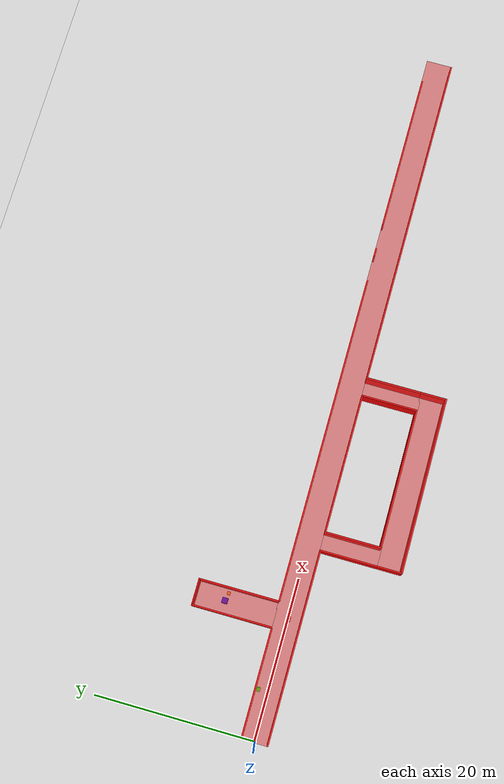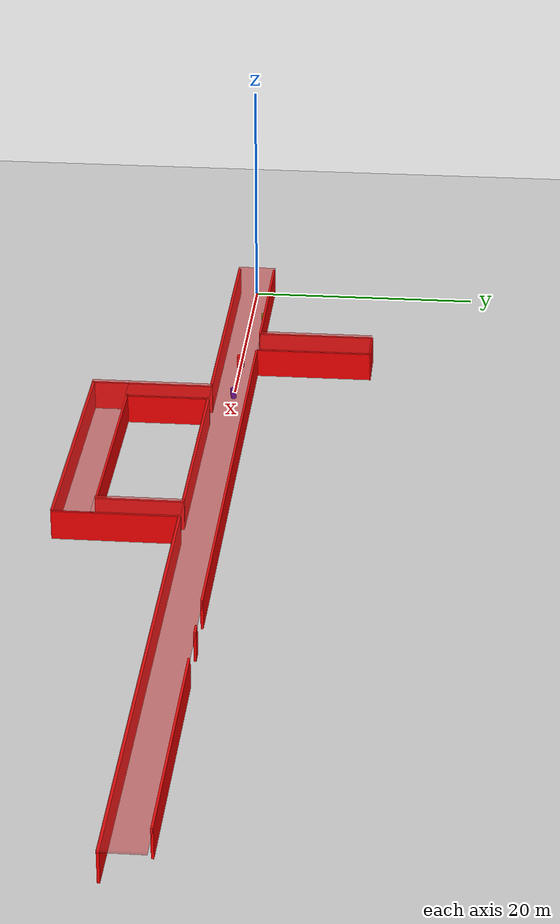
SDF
<sdf version="1.6">
  <world name="real_branch_tunnel">

    <!-- 光照与场景 -->
    <include>
      <uri>model://sun</uri>
    </include>

    <include>
      <uri>model://ground_plane</uri>
    </include>

    <scene>
      <ambient>0.25 0.25 0.25 1</ambient>
      <background>0.7 0.7 0.7 1</background>
      <shadows>false</shadows>
    </scene>

    <!-- 主隧道参数说明（逻辑） -->
    <!-- 主隧道沿 x 方向，长度 30m -->
    <!-- 内宽 3.0m，墙厚 0.2m，高 2.5m -->
    <!-- 所以左右墙中心在 y = ±1.6 -->
    <!-- 顶板中心 z = 2.6，厚 0.2 -->

    <!-- 主隧道顶板 -->
    <model name="main_ceiling">
      <static>true</static>
      <pose>45 0 2.6 0 0 0</pose>
      <link name="link">
        <collision name="collision">
          <geometry>
            <box><size>90 3.4 0.2</size></box>
          </geometry>
        </collision>
        <visual name="visual">
          <geometry>
            <box><size>90 3.4 0.2</size></box>
          </geometry>
          <material>
            <script>
              <uri>file://media/materials/scripts/gazebo.material</uri>
              <name>Gazebo/RedTransparent</name>
            </script>
          </material>
        </visual>
      </link>
    </model>

    <!-- 主隧道右墙，切成三段，中间留开口 -->
    <!-- 开口宽度2.5m，中心分别在x=25m和x=45m -->
    <!-- 第一段：x=0m 到 x=23.75m -->
    <model name="main_wall_right1">
      <static>true</static>
      <pose>11.875 -1.6 1.25 0 0 0</pose>
      <link name="link">
        <collision name="collision">
          <geometry>
            <box><size>23.75 0.2 2.5</size></box>
          </geometry>
        </collision>
        <visual name="visual">
          <geometry>
            <box><size>23.75 0.2 2.5</size></box>
          </geometry>
          <material>
            <ambient>1 0 0 1</ambient>
            <diffuse>1 0 0 1</diffuse>
            <specular>0.3 0.3 0.3 1</specular>
            <emissive>0.15 0 0 1</emissive>
          </material>
        </visual>
      </link>
    </model>

    <!-- 第二段：x=26.25m 到 x=43.75m -->
    <model name="main_wall_right2">
      <static>true</static>
      <pose>35 -1.6 1.25 0 0 0</pose>
      <link name="link">
        <collision name="collision">
          <geometry>
            <box><size>17.5 0.2 2.5</size></box>
          </geometry>
        </collision>
        <visual name="visual">
          <geometry>
            <box><size>17.5 0.2 2.5</size></box>
          </geometry>
          <material>
            <ambient>1 0 0 1</ambient>
            <diffuse>1 0 0 1</diffuse>
            <specular>0.3 0.3 0.3 1</specular>
            <emissive>0.15 0 0 1</emissive>
          </material>
        </visual>
      </link>
    </model>

    <!-- 第三段：x=46.25m 到 x=90m -->
    <model name="main_wall_right3">
      <static>true</static>
      <pose>68.125 -1.6 1.25 0 0 0</pose>
      <link name="link">
        <collision name="collision">
          <geometry>
            <box><size>43.75 0.2 2.5</size></box>
          </geometry>
        </collision>
        <visual name="visual">
          <geometry>
            <box><size>43.75 0.2 2.5</size></box>
          </geometry>
          <material>
            <ambient>1 0 0 1</ambient>
            <diffuse>1 0 0 1</diffuse>
            <specular>0.3 0.3 0.3 1</specular>
            <emissive>0.15 0 0 1</emissive>
          </material>
        </visual>
      </link>
    </model>

    <!-- 主隧道左墙：切成四段，中间留开口，形成真正岔口入口 -->
    <!-- 第一开口宽度 3.4m，中心在 x = 15 -->
    <!-- 第二三开口宽度 2.9m，中心分别在 x = 60 x = 65 -->
    <!-- 第一段：x = 0 到 13.3 -->
    <model name="main_wall_left1">
      <static>true</static>
      <pose>6.65 1.6 1.25 0 0 0</pose>
      <link name="link">
        <collision name="collision">
          <geometry>
            <box><size>13.3 0.2 2.5</size></box>
          </geometry>
        </collision>
        <visual name="visual">
          <geometry>
            <box><size>13.3 0.2 2.5</size></box>
          </geometry>
          <material>
            <ambient>1 0 0 1</ambient>
            <diffuse>1 0 0 1</diffuse>
            <specular>0.3 0.3 0.3 1</specular>
            <emissive>0.15 0 0 1</emissive>
          </material>
        </visual>
      </link>
    </model>

    <!-- 第二段：x = 16.7 到 58.55 -->
    <model name="main_wall_left2">
      <static>true</static>
      <pose>37.625 1.6 1.25 0 0 0</pose>
      <link name="link">
        <collision name="collision">
          <geometry>
            <box><size>41.85 0.2 2.5</size></box>
          </geometry>
        </collision>
        <visual name="visual">
          <geometry>
            <box><size>41.85 0.2 2.5</size></box>
          </geometry>
          <material>
            <ambient>1 0 0 1</ambient>
            <diffuse>1 0 0 1</diffuse>
            <specular>0.3 0.3 0.3 1</specular>
            <emissive>0.15 0 0 1</emissive>
          </material>
        </visual>
      </link>
    </model>
    <!-- 第三段：x = 61.45 到 63.55 -->
    <model name="main_wall_left3">
      <static>true</static>
      <pose>62.5 1.6 1.25 0 0 0</pose>
      <link name="link">
        <collision name="collision">
          <geometry>
            <box><size>1.05 0.2 2.5</size></box>
          </geometry>
        </collision>
        <visual name="visual">
          <geometry>
            <box><size>1.05 0.2 2.5</size></box>
          </geometry>
          <material>
            <ambient>1 0 0 1</ambient>
            <diffuse>1 0 0 1</diffuse>
            <specular>0.3 0.3 0.3 1</specular>
            <emissive>0.15 0 0 1</emissive>
          </material>
        </visual>
      </link>
    </model>
    <!-- 第四段：x = 66.45 到 87.1 -->
    <model name="main_wall_left4">
      <static>true</static>
      <pose>76.775 1.6 1.25 0 0 0</pose>
      <link name="link">
        <collision name="collision">
          <geometry>
            <box><size>20.65 0.2 2.5</size></box>
          </geometry>
        </collision>
        <visual name="visual">
          <geometry>
            <box><size>20.65 0.2 2.5</size></box>
          </geometry>
          <material>
            <ambient>1 0 0 1</ambient>
            <diffuse>1 0 0 1</diffuse>
            <specular>0.3 0.3 0.3 1</specular>
            <emissive>0.15 0 0 1</emissive>
          </material>
        </visual>
      </link>
    </model>

    <!-- 支路（真正的岔口） -->
    <!-- 从主隧道左侧开口处分出去，沿 +y 方向延伸 -->
    <!-- 支路中心线 x = 15 -->
    <!-- 支路长度 10m -->
    <!-- 支路内宽 3.0m，墙厚 0.2m，高 2.5m -->

    <!-- 支路左墙（x = 13.4） -->
    <model name="branch_wall_left">
      <static>true</static>
      <pose>13.4 6.6 1.25 0 0 0</pose>
      <link name="link">
        <collision name="collision">
          <geometry>
            <box><size>0.2 10 2.5</size></box>
          </geometry>
        </collision>
        <visual name="visual">
          <geometry>
            <box><size>0.2 10 2.5</size></box>
          </geometry>
          <material>
            <ambient>1 0 0 1</ambient>
            <diffuse>1 0 0 1</diffuse>
            <specular>0.3 0.3 0.3 1</specular>
            <emissive>0.15 0 0 1</emissive>
          </material>
        </visual>
      </link>
    </model>

    <!-- 支路右墙（x = 16.6） -->
    <model name="branch_wall_right">
      <static>true</static>
      <pose>16.6 6.6 1.25 0 0 0</pose>
      <link name="link">
        <collision name="collision">
          <geometry>
            <box><size>0.2 10 2.5</size></box>
          </geometry>
        </collision>
        <visual name="visual">
          <geometry>
            <box><size>0.2 10 2.5</size></box>
          </geometry>
          <material>
            <ambient>1 0 0 1</ambient>
            <diffuse>1 0 0 1</diffuse>
            <specular>0.3 0.3 0.3 1</specular>
            <emissive>0.15 0 0 1</emissive>
          </material>
        </visual>
      </link>
    </model>

    <!-- 支路顶板 -->
    <model name="branch_ceiling">
      <static>true</static>
      <pose>15 6.6 2.6 0 0 0</pose>
      <link name="link">
        <collision name="collision">
          <geometry>
            <box><size>3.4 10 0.2</size></box>
          </geometry>
        </collision>
        <visual name="visual">
          <geometry>
            <box><size>3.4 10 0.2</size></box>
          </geometry>
          <material>
            <script>
              <uri>file://media/materials/scripts/gazebo.material</uri>
              <name>Gazebo/RedTransparent</name>
            </script>
          </material>
        </visual>
      </link>
    </model>

    <!-- 可选：支路末端封口墙 -->
    <!-- 如果你想让支路尽头封死就保留；如果想让它继续通向更远，就删掉这个 model -->
    <model name="branch_end_wall">
      <static>true</static>
      <pose>15 11.6 1.25 0 0 0</pose>
      <link name="link">
        <collision name="collision">
          <geometry>
            <box><size>3.4 0.2 2.5</size></box>
          </geometry>
        </collision>
        <visual name="visual">
          <geometry>
            <box><size>3.4 0.2 2.5</size></box>
          </geometry>
          <material>
            <ambient>1 0 0 1</ambient>
            <diffuse>1 0 0 1</diffuse>
            <specular>0.3 0.3 0.3 1</specular>
            <emissive>0.15 0 0 1</emissive>
          </material>
        </visual>
      </link>
    </model>

    <!-- 回环支路 -->
    <!-- 从主隧道右侧开口处分出去，先沿 -y 方向延伸 10 m ，再沿 +x 方向延伸 20 m，最后向 +y 方向延伸回主隧道-->
    <!-- 支路1 中心线 x = 25 -->
    <!-- 支路1长度 10m -->
    <!-- 支路1内宽 2.1 m，墙厚 0.2m，高 2.5m -->

    <!-- 支路1左墙（x = 23.85） -->
    <model name="branch1_wall_left">
      <static>true</static>
      <pose>23.85 -6.7 1.25 0 0 0</pose>
      <link name="link">
        <collision name="collision">
          <geometry>
            <box><size>0.2 10.4 2.5</size></box>
          </geometry>
        </collision>
        <visual name="visual">
          <geometry>
            <box><size>0.2 10.4 2.5</size></box>
          </geometry>
          <material>
            <ambient>1 0 0 1</ambient>
            <diffuse>1 0 0 1</diffuse>
            <specular>0.3 0.3 0.3 1</specular>
            <emissive>0.15 0 0 1</emissive>
          </material>
        </visual>
      </link>
    </model>

    <!-- 支路1右墙（x = 26.15） -->
    <model name="branch1_wall_right">
      <static>true</static>
      <pose>26.15 -5.1 1.25 0 0 0</pose>
      <link name="link">
        <collision name="collision">
          <geometry>
            <box><size>0.2 7.2 2.5</size></box>
          </geometry>
        </collision>
        <visual name="visual">
          <geometry>
            <box><size>0.2 7.2 2.5</size></box>
          </geometry>
          <material>
            <ambient>1 0 0 1</ambient>
            <diffuse>1 0 0 1</diffuse>
            <specular>0.3 0.3 0.3 1</specular>
            <emissive>0.15 0 0 1</emissive>
          </material>
        </visual>
      </link>
    </model>

    <!-- 支路1顶板 -->
    <model name="branch1_ceiling">
      <static>true</static>
      <pose>25 -5.1 2.6 0 0 0</pose>
      <link name="link">
        <collision name="collision">
          <geometry>
            <box><size>2.5 7.2 0.2</size></box>
          </geometry>
        </collision>
        <visual name="visual">
          <geometry>
            <box><size>2.5 7.2 0.2</size></box>
          </geometry>
          <material>
            <script>
              <uri>file://media/materials/scripts/gazebo.material</uri>
              <name>Gazebo/RedTransparent</name>
            </script>
          </material>
        </visual>
      </link>
    </model>

    <!-- 分隧道1右墙（y = -11.8 ） -->
    <model name="tunnel1_wall_right">
      <static>true</static>
      <pose>35 -11.8 1.25 0 0 0</pose>
      <link name="link">
        <collision name="collision">
          <geometry>
            <box><size>22.5 0.2 2.5</size></box>
          </geometry>
        </collision>
        <visual name="visual">
          <geometry>
            <box><size>22.5 0.2 2.5</size></box>
          </geometry>
          <material>
            <ambient>1 0 0 1</ambient>
            <diffuse>1 0 0 1</diffuse>
            <specular>0.3 0.3 0.3 1</specular>
            <emissive>0.15 0 0 1</emissive>
          </material>
        </visual>
      </link>
    </model>

    <!-- 分隧道1左墙（y = -8.6 ） -->
    <model name="tunnel1_wall_left">
      <static>true</static>
      <pose>35 -8.6 1.25 0 0 0</pose>
      <link name="link">
        <collision name="collision">
          <geometry>
            <box><size>17.5 0.2 2.5</size></box>
          </geometry>
        </collision>
        <visual name="visual">
          <geometry>
            <box><size>17.5 0.2 2.5</size></box>
          </geometry>
          <material>
            <ambient>1 0 0 1</ambient>
            <diffuse>1 0 0 1</diffuse>
            <specular>0.3 0.3 0.3 1</specular>
            <emissive>0.15 0 0 1</emissive>
          </material>
        </visual>
      </link>
    </model>

    <!-- 分隧道1顶板 -->
    <model name="tunnel1_ceiling">
      <static>true</static>
      <pose>35 -10.2 2.6 0 0 0</pose>
      <link name="link">
        <collision name="collision">
          <geometry>
            <box><size>22.5 3.4 0.2</size></box>
          </geometry>
        </collision>
        <visual name="visual">
          <geometry>
            <box><size>22.5 3.4 0.2</size></box>
          </geometry>
          <material>
            <script>
              <uri>file://media/materials/scripts/gazebo.material</uri>
              <name>Gazebo/RedTransparent</name>
            </script>
          </material>
        </visual>
      </link>
    </model>

    <!-- 支路2左墙（x = 43.85 ） -->
    <model name="branch2_wall_left">
      <static>true</static>
      <pose>43.85 -5.1 1.25 0 0 0</pose>
      <link name="link">
        <collision name="collision">
          <geometry>
            <box><size>0.2 7.2 2.5</size></box>
          </geometry>
        </collision>
        <visual name="visual">
          <geometry>
            <box><size>0.2 7.2 2.5</size></box>
          </geometry>
          <material>
            <ambient>1 0 0 1</ambient>
            <diffuse>1 0 0 1</diffuse>
            <specular>0.3 0.3 0.3 1</specular>
            <emissive>0.15 0 0 1</emissive>
          </material>
        </visual>
      </link>
    </model>

    <!-- 支路2右墙（x = 46.15） -->
    <model name="branch2_wall_right">
      <static>true</static>
      <pose>46.15 -6.7 1.25 0 0 0</pose>
      <link name="link">
        <collision name="collision">
          <geometry>
            <box><size>0.2 10.4 2.5</size></box>
          </geometry>
        </collision>
        <visual name="visual">
          <geometry>
            <box><size>0.2 10.4 2.5</size></box>
          </geometry>
          <material>
            <ambient>1 0 0 1</ambient>
            <diffuse>1 0 0 1</diffuse>
            <specular>0.3 0.3 0.3 1</specular>
            <emissive>0.15 0 0 1</emissive>
          </material>
        </visual>
      </link>
    </model>

    <!-- 支路2顶板 -->
<model name="branch2_ceiling">
  <static>true</static>
  <pose>45 -5.1 2.6 0 0 0</pose>
  <link name="link">
    <collision name="collision">
      <geometry>
        <box><size>2.5 7.2 0.2</size></box>
      </geometry>
    </collision>
    <visual name="visual">
      <geometry>
        <box><size>2.5 7.2 0.2</size></box>
      </geometry>
      <material>
        <script>
          <uri>file://media/materials/scripts/gazebo.material</uri>
          <name>Gazebo/RedTransparent</name>
        </script>
      </material>
    </visual>
  </link>
</model>

    <!-- 一些障碍物（都放在通道内部） -->

    <!-- 主隧道左侧：绿色小箱体 -->
    <model name="obstacle_main_left_small">
      <static>true</static>
      <pose>6 1.25 0.4 0 0 0</pose>
      <link name="link">
        <collision name="collision">
          <geometry>
            <box><size>0.5 0.5 0.8</size></box>
          </geometry>
        </collision>
        <visual name="visual">
          <geometry>
            <box><size>0.5 0.5 0.8</size></box>
          </geometry>
          <material>
            <ambient>0 1 0 1</ambient>
            <diffuse>0 1 0 1</diffuse>
          </material>
        </visual>
      </link>
    </model>

    <!-- 主隧道右侧：蓝色圆柱 -->
    <model name="obstacle_main_right_cylinder">
      <static>true</static>
      <pose>21 0.0 0.45 0 0 0</pose>
      <link name="link">
        <collision name="collision">
          <geometry>
            <cylinder>
              <radius>0.25</radius>
              <length>0.9</length>
            </cylinder>
          </geometry>
        </collision>
        <visual name="visual">
          <geometry>
            <cylinder>
              <radius>0.25</radius>
              <length>0.9</length>
            </cylinder>
          </geometry>
          <material>
            <ambient>0 0 1 1</ambient>
            <diffuse>0 0 1 1</diffuse>
          </material>
        </visual>
      </link>
    </model>

    <!-- 支路右侧：橙色小方柱 -->
    <model name="obstacle_branch_right_small">
      <static>true</static>
      <pose>16.0 7.8 0.35 0 0 0</pose>
      <link name="link">
        <collision name="collision">
          <geometry>
            <box><size>0.4 0.4 0.7</size></box>
          </geometry>
        </collision>
        <visual name="visual">
          <geometry>
            <box><size>0.4 0.4 0.7</size></box>
          </geometry>
          <material>
            <ambient>1 0.5 0 1</ambient>
            <diffuse>1 0.5 0 1</diffuse>
          </material>
        </visual>
      </link>
    </model>

    <!-- 支路内障碍物 -->
    <model name="obstacle_branch_1">
      <static>true</static>
      <pose>15 8 0.6 0 0 0</pose>
      <link name="link">
        <collision name="collision">
          <geometry>
            <box><size>0.7 0.7 1.2</size></box>
          </geometry>
        </collision>
        <visual name="visual">
          <geometry>
            <box><size>0.7 0.7 1.2</size></box>
          </geometry>
          <material>
            <ambient>0 0 1 1</ambient>
            <diffuse>0 0 1 1</diffuse>
          </material>
        </visual>
      </link>
    </model>
    <!-- 动态障碍物 -->
    <!-- 长宽为0.6m，高为1.0m的红色长方体，在-1.2m到1.2m间移动，用move.py程序调控 -->
    <model name="dynamic_obstacle">
      <pose>15 0.0 0.5 0 0 0</pose>
      <link name="body">
        <inertial>
          <mass>1.0</mass>
          <inertia>
            <ixx>0.1133</ixx><ixy>0</ixy><ixz>0</ixz>
            <iyy>0.1133</iyy><iyz>0</iyz>
            <izz>0.06</izz>
          </inertia>
        </inertial>
        <collision name="collision">
          <geometry>
            <box><size>0.6 0.6 1.0</size></box>
          </geometry>
        </collision>
        <visual name="visual">
          <geometry>
            <box><size>0.6 0.6 1.0</size></box>
          </geometry>
          <material>
            <ambient>1 0 0 1</ambient>
            <diffuse>1 0 0 1</diffuse>
          </material>
        </visual>
      </link>
    </model>
  </world>
</sdf>
